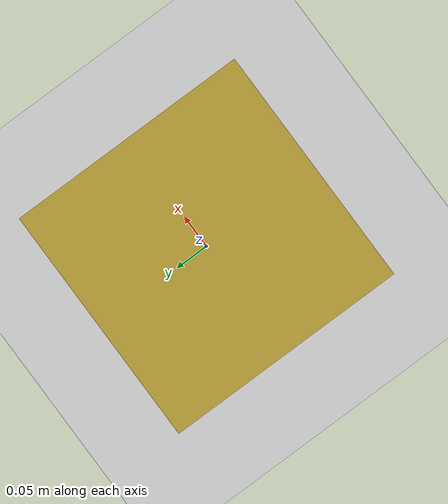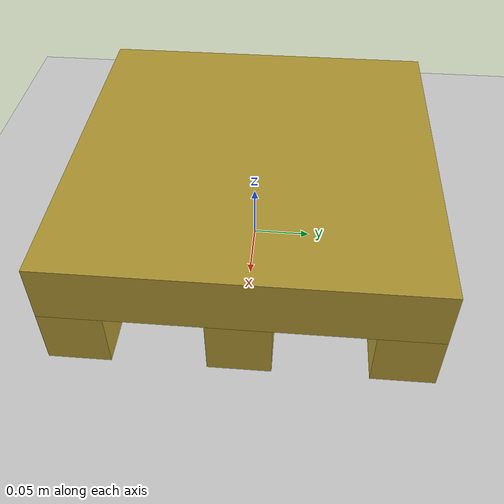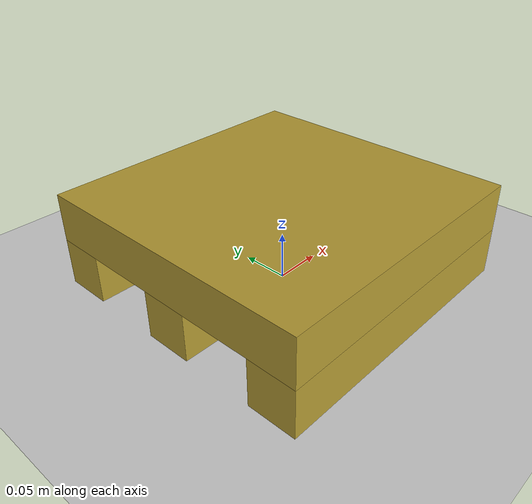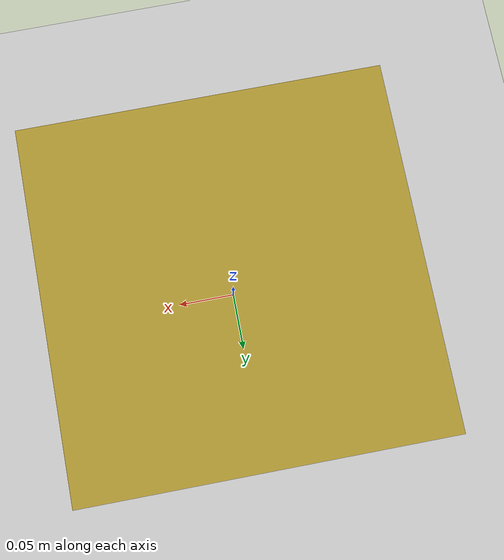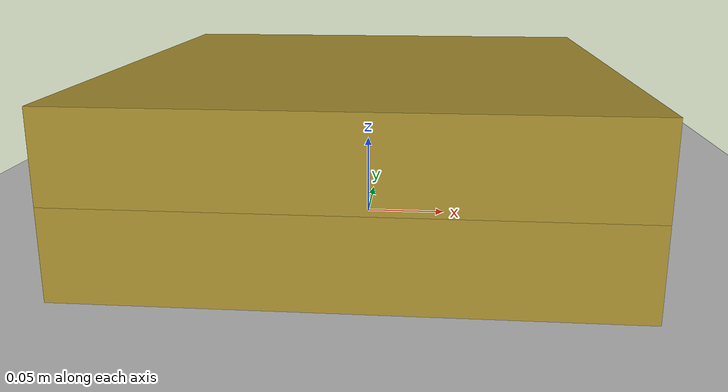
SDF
<?xml version="1.0" ?>
<sdf version="1.6">
  <world name="pallet_world">
    <!-- 物理参数 -->
    <physics type="ode">
      <max_step_size>0.001</max_step_size>
      <real_time_update_rate>1000</real_time_update_rate>
    </physics>

    <!-- 太阳光 -->
    <include>
      <uri>model://sun</uri>
    </include>

    <!-- 地面平面 -->
    <include>
      <uri>model://ground_plane</uri>
    </include>

    <!-- 托盘模型 -->
    <include>
      <uri>model://pallet</uri>
      <name>pallet</name>
      <pose>0 0 0 0 0 0</pose>
    </include>

    <!-- RGBD 相机（只用 RGB 相机插件 + depth sensor）-->
    <model name="rgbd_camera">
      <static>true</static>
      <pose>2 0 0.25 0 0 3.14</pose>
      <link name="camera_link">
        <inertial>
          <mass>1.0</mass>
          <inertia>
            <ixx>1</ixx><ixy>0</ixy><ixz>0</ixz>
            <iyy>1</iyy><iyz>0</iyz>
            <izz>1</izz>
          </inertia>
        </inertial>

        <!-- RGB 相机传感器 -->
        <sensor name="rgb_camera" type="camera">
          <always_on>true</always_on>
          <update_rate>30</update_rate>
          <visualize>true</visualize>
          <camera>
            <horizontal_fov>1.047</horizontal_fov>
            <image>
              <width>640</width>
              <height>480</height>
              <format>R8G8B8</format>
            </image>
            <clip>
              <near>0.1</near>
              <far>10.0</far>
            </clip>
          </camera>
          <plugin name="rgb_camera_plugin" filename="libgazebo_ros_camera.so">
            <ros>
              <namespace>/rgbd</namespace>
              <remapping>image_raw:=image_raw</remapping>
              <remapping>camera_info:=camera_info</remapping>
            </ros>
            <frame_name>camera_link</frame_name>
          </plugin>
        </sensor>

        <!-- 深度相机传感器（用 camera_depth 类型） -->
        <sensor name="depth_camera" type="camera">
          <always_on>true</always_on>
          <update_rate>30</update_rate>
          <visualize>false</visualize>
          <camera>
            <horizontal_fov>1.047</horizontal_fov>
            <image>
              <width>640</width>
              <height>480</height>
              <format>R_FLOAT32</format>
            </image>
            <clip>
              <near>0.1</near>
              <far>10.0</far>
            </clip>
          </camera>
          <!-- 深度相机用 camera 插件 + 特殊处理 -->
          <plugin name="depth_camera_plugin" filename="libgazebo_ros_camera.so">
            <ros>
              <namespace>/rgbd</namespace>
              <remapping>image_raw:=depth_image</remapping>
              <remapping>camera_info:=depth_camera_info</remapping>
            </ros>
            <frame_name>camera_link</frame_name>
          </plugin>
        </sensor>
      </link>
    </model>

    <!-- ROS2 Gazebo bridge 插件（替代 gazebo_ros_init 等） -->
    <plugin name="gazebo_ros_state" filename="libgazebo_ros_state.so">
      <ros>
        <namespace>/gazebo</namespace>
      </ros>
    </plugin>

  </world>
</sdf>

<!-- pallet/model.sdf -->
<sdf version="1.6">
  <model name="pallet">
    <!-- 托盘主体（正方形平板） -->
    <link name="pallet_base">
      <pose>0 0 0.075 0 0 0</pose>  <!-- 高度为厚度的一半 -->

      <inertial>
        <mass>2.0</mass>
        <inertia>
          <ixx>0.02</ixx>
          <ixy>0</ixy>
          <ixz>0</ixz>
          <iyy>0.02</iyy>
          <iyz>0</iyz>
          <izz>0.04</izz>
        </inertia>
      </inertial>

      <collision name="base_collision">
        <geometry>
          <box>
            <size>0.3 0.3 0.05</size>
          </box>
        </geometry>
        <surface>
          <friction>
            <ode>
              <mu>0.8</mu>
              <mu2>0.6</mu2>
            </ode>
          </friction>
        </surface>
      </collision>

      <visual name="base_visual">
        <geometry>
          <box>
            <size>0.3 0.3 0.05</size>
          </box>
        </geometry>
        <material>
          <ambient>0.7 0.6 0.2 1</ambient>  <!-- 木色 -->
          <diffuse>0.7 0.6 0.2 1</diffuse>
          <specular>0.1 0.1 0.1 1</specular>
        </material>
      </visual>
    </link>

    <!-- 左侧支撑腿 -->
    <link name="left_leg">
      <pose>0.0 0.125 0.025 0 0 0</pose>  <!-- 在左侧，距离中心0.075m -->

      <inertial>
        <mass>0.5</mass>
        <inertia>
          <ixx>0.001</ixx>
          <ixy>0</ixy>
          <ixz>0</ixz>
          <iyy>0.001</iyy>
          <iyz>0</iyz>
          <izz>0.001</izz>
        </inertia>
      </inertial>

      <collision name="left_leg_collision">
        <geometry>
          <box>
            <size>0.3 0.05 0.05</size>
          </box>
        </geometry>
      </collision>

      <visual name="left_leg_visual">
        <geometry>
          <box>
            <size>0.3 0.05 0.05</size>
          </box>
        </geometry>
        <material>
          <ambient>0.7 0.6 0.2 1</ambient>
          <diffuse>0.7 0.6 0.2 1</diffuse>
          <specular>0.1 0.1 0.1 1</specular>
        </material>
      </visual>
    </link>

    <!-- 右侧支撑腿 -->
    <link name="center_leg">
      <pose>0.0 -0.125 0.025 0 0 0</pose>  <!-- 在右侧，距离中心0.075m -->

      <inertial>
        <mass>0.5</mass>
        <inertia>
          <ixx>0.001</ixx>
          <ixy>0</ixy>
          <ixz>0</ixz>
          <iyy>0.001</iyy>
          <iyz>0</iyz>
          <izz>0.001</izz>
        </inertia>
      </inertial>

      <collision name="center_leg_collision">
        <geometry>
          <box>
            <size>0.3 0.05 0.05</size>
          </box>
        </geometry>
      </collision>

      <visual name="center_leg_visual">
        <geometry>
          <box>
            <size>0.3 0.05 0.05</size>
          </box>
        </geometry>
        <material>
          <ambient>0.7 0.6 0.2 1</ambient>
          <diffuse>0.7 0.6 0.2 1</diffuse>
          <specular>0.1 0.1 0.1 1</specular>
        </material>
      </visual>
    </link>

    <!-- 中间支撑腿 -->
    <link name="right_leg">
      <pose>0 0 0.025 0 0 0</pose>  <!-- 在中间 -->

      <inertial>
        <mass>0.5</mass>
        <inertia>
          <ixx>0.001</ixx>
          <ixy>0</ixy>
          <ixz>0</ixz>
          <iyy>0.001</iyy>
          <iyz>0</iyz>
          <izz>0.001</izz>
        </inertia>
      </inertial>

      <collision name="right_leg_collision">
        <geometry>
          <box>
            <size>0.3 0.05 0.05</size>  <!-- 这个腿是横向的，形成叉孔 -->
          </box>
        </geometry>
      </collision>

      <visual name="right_leg_visual">
        <geometry>
          <box>
            <size>0.3 0.05 0.05</size>
          </box>
        </geometry>
        <material>
          <ambient>0.7 0.6 0.2 1</ambient>
          <diffuse>0.7 0.6 0.2 1</diffuse>
          <specular>0.1 0.1 0.1 1</specular>
        </material>
      </visual>
    </link>

    <!-- 支撑腿连接关节 -->
    <joint name="left_leg_joint" type="fixed">
      <parent>pallet_base</parent>
      <child>left_leg</child>
    </joint>

    <joint name="center_leg_joint" type="fixed">
      <parent>pallet_base</parent>
      <child>center_leg</child>
    </joint>

    <joint name="right_leg_joint" type="fixed">
      <parent>pallet_base</parent>
      <child>right_leg</child>
    </joint>
  </model>
</sdf>
